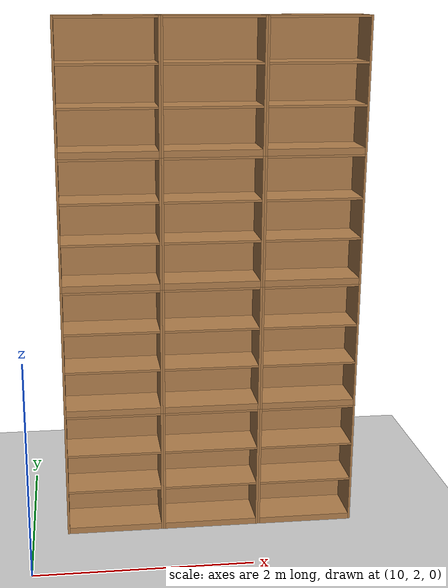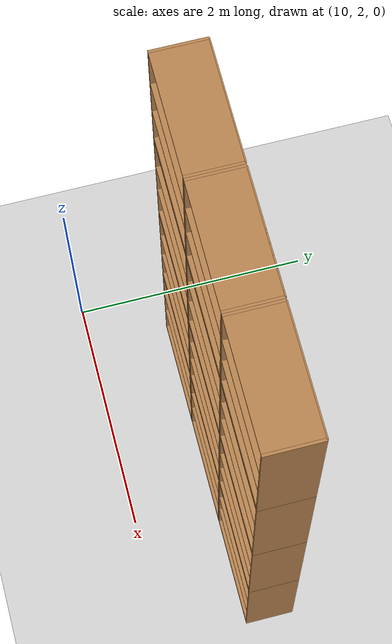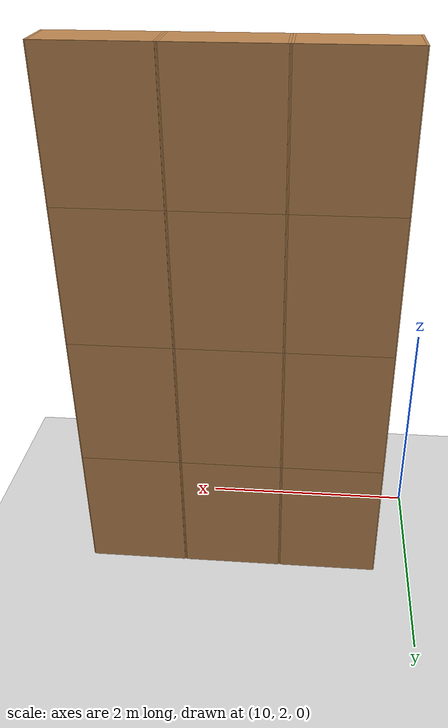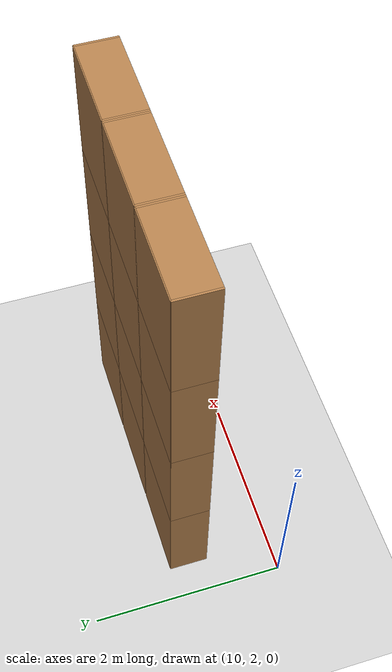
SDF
<sdf version="1.6">
 <world name="default">
  <model name="ground_plane">
   <static>1</static>
   <link name="link">
    <collision name="collision">
     <geometry><plane><normal>0 0 1</normal><size>100 100</size></plane></geometry>
     <surface>
      <contact><collide_bitmask>65535</collide_bitmask></contact>
      <friction><ode><mu>100</mu><mu2>50</mu2></ode></friction>
     </surface>
    </collision>
    <visual name="visual">
     <cast_shadows>0</cast_shadows>
     <geometry><plane><normal>0 0 1</normal><size>100 100</size></plane></geometry>
     <material>
      <script><uri>file://media/materials/scripts/gazebo.material</uri><name>Gazebo/Grey</name></script>
     </material>
    </visual>
   </link>
  </model>
  <model name="shelf2.0_clone_0_clone_clone_1">
   <model name="shelf1.0">
    <model name="bookshelf">
     <static>1</static>
     <link name="link">
      <inertial><mass>1</mass></inertial>
      <collision name="back">
       <pose>0 0.005 0.6 0 -0 0</pose>
       <geometry><box><size>0.9 0.01 1.2</size></box></geometry>
      </collision>
      <visual name="visual1">
       <pose>0 0.005 0.6 0 -0 0</pose>
       <geometry><box><size>0.9 0.01 1.2</size></box></geometry>
       <material>
        <script><uri>file://media/materials/scripts/gazebo.material</uri><name>Gazebo/Wood</name></script>
       </material>
      </visual>
      <collision name="left_side">
       <pose>0.45 -0.195 0.6 0 -0 0</pose>
       <geometry><box><size>0.02 0.4 1.2</size></box></geometry>
      </collision>
      <visual name="visual2">
       <pose>0.45 -0.195 0.6 0 -0 0</pose>
       <geometry><box><size>0.02 0.4 1.2</size></box></geometry>
       <material>
        <script><uri>file://media/materials/scripts/gazebo.material</uri><name>Gazebo/Wood</name></script>
       </material>
      </visual>
      <collision name="right_side">
       <pose>-0.45 -0.195 0.6 0 -0 0</pose>
       <geometry><box><size>0.02 0.4 1.2</size></box></geometry>
      </collision>
      <visual name="visual3">
       <pose>-0.45 -0.195 0.6 0 -0 0</pose>
       <geometry><box><size>0.02 0.4 1.2</size></box></geometry>
       <material>
        <script><uri>file://media/materials/scripts/gazebo.material</uri><name>Gazebo/Wood</name></script>
       </material>
      </visual>
      <collision name="bottom">
       <pose>0 -0.195 0.03 0 -0 0</pose>
       <geometry><box><size>0.88 0.4 0.06</size></box></geometry>
      </collision>
      <visual name="visual4">
       <pose>0 -0.195 0.03 0 -0 0</pose>
       <geometry><box><size>0.88 0.4 0.06</size></box></geometry>
       <material>
        <script><uri>file://media/materials/scripts/gazebo.material</uri><name>Gazebo/Wood</name></script>
       </material>
      </visual>
      <collision name="top">
       <pose>0 -0.195 1.19 0 -0 0</pose>
       <geometry><box><size>0.88 0.4 0.02</size></box></geometry>
      </collision>
      <visual name="visual5">
       <pose>0 -0.195 1.19 0 -0 0</pose>
       <geometry><box><size>0.88 0.4 0.02</size></box></geometry>
       <material>
        <script><uri>file://media/materials/scripts/gazebo.material</uri><name>Gazebo/Wood</name></script>
       </material>
      </visual>
      <collision name="low_shelf">
       <pose>0 -0.195 0.43 0 -0 0</pose>
       <geometry><box><size>0.88 0.4 0.02</size></box></geometry>
      </collision>
      <visual name="visual6">
       <pose>0 -0.195 0.43 0 -0 0</pose>
       <geometry><box><size>0.88 0.4 0.02</size></box></geometry>
       <material>
        <script><uri>file://media/materials/scripts/gazebo.material</uri><name>Gazebo/Wood</name></script>
       </material>
      </visual>
      <collision name="high_shelf">
       <pose>0 -0.195 0.8 0 -0 0</pose>
       <geometry><box><size>0.88 0.4 0.02</size></box></geometry>
      </collision>
      <visual name="visual7">
       <pose>0 -0.195 0.8 0 -0 0</pose>
       <geometry><box><size>0.88 0.4 0.02</size></box></geometry>
       <material>
        <script><uri>file://media/materials/scripts/gazebo.material</uri><name>Gazebo/Wood</name></script>
       </material>
      </visual>
     </link>
     <pose>1e-06 0 -1.8 0 -0 0</pose>
    </model>
    <model name="bookshelf_clone">
     <static>1</static>
     <link name="link">
      <inertial><mass>1</mass></inertial>
      <collision name="back">
       <pose>0 0.005 0.6 0 -0 0</pose>
       <geometry><box><size>0.9 0.01 1.2</size></box></geometry>
      </collision>
      <visual name="visual1">
       <pose>0 0.005 0.6 0 -0 0</pose>
       <geometry><box><size>0.9 0.01 1.2</size></box></geometry>
       <material>
        <script><uri>file://media/materials/scripts/gazebo.material</uri><name>Gazebo/Wood</name></script>
       </material>
      </visual>
      <collision name="left_side">
       <pose>0.45 -0.195 0.6 0 -0 0</pose>
       <geometry><box><size>0.02 0.4 1.2</size></box></geometry>
      </collision>
      <visual name="visual2">
       <pose>0.45 -0.195 0.6 0 -0 0</pose>
       <geometry><box><size>0.02 0.4 1.2</size></box></geometry>
       <material>
        <script><uri>file://media/materials/scripts/gazebo.material</uri><name>Gazebo/Wood</name></script>
       </material>
      </visual>
      <collision name="right_side">
       <pose>-0.45 -0.195 0.6 0 -0 0</pose>
       <geometry><box><size>0.02 0.4 1.2</size></box></geometry>
      </collision>
      <visual name="visual3">
       <pose>-0.45 -0.195 0.6 0 -0 0</pose>
       <geometry><box><size>0.02 0.4 1.2</size></box></geometry>
       <material>
        <script><uri>file://media/materials/scripts/gazebo.material</uri><name>Gazebo/Wood</name></script>
       </material>
      </visual>
      <collision name="bottom">
       <pose>0 -0.195 0.03 0 -0 0</pose>
       <geometry><box><size>0.88 0.4 0.06</size></box></geometry>
      </collision>
      <visual name="visual4">
       <pose>0 -0.195 0.03 0 -0 0</pose>
       <geometry><box><size>0.88 0.4 0.06</size></box></geometry>
       <material>
        <script><uri>file://media/materials/scripts/gazebo.material</uri><name>Gazebo/Wood</name></script>
       </material>
      </visual>
      <collision name="top">
       <pose>0 -0.195 1.19 0 -0 0</pose>
       <geometry><box><size>0.88 0.4 0.02</size></box></geometry>
      </collision>
      <visual name="visual5">
       <pose>0 -0.195 1.19 0 -0 0</pose>
       <geometry><box><size>0.88 0.4 0.02</size></box></geometry>
       <material>
        <script><uri>file://media/materials/scripts/gazebo.material</uri><name>Gazebo/Wood</name></script>
       </material>
      </visual>
      <collision name="low_shelf">
       <pose>0 -0.195 0.43 0 -0 0</pose>
       <geometry><box><size>0.88 0.4 0.02</size></box></geometry>
      </collision>
      <visual name="visual6">
       <pose>0 -0.195 0.43 0 -0 0</pose>
       <geometry><box><size>0.88 0.4 0.02</size></box></geometry>
       <material>
        <script><uri>file://media/materials/scripts/gazebo.material</uri><name>Gazebo/Wood</name></script>
       </material>
      </visual>
      <collision name="high_shelf">
       <pose>0 -0.195 0.8 0 -0 0</pose>
       <geometry><box><size>0.88 0.4 0.02</size></box></geometry>
      </collision>
      <visual name="visual7">
       <pose>0 -0.195 0.8 0 -0 0</pose>
       <geometry><box><size>0.88 0.4 0.02</size></box></geometry>
       <material>
        <script><uri>file://media/materials/scripts/gazebo.material</uri><name>Gazebo/Wood</name></script>
       </material>
      </visual>
     </link>
     <pose>1e-06 0 -0.600002 0 -0 0</pose>
    </model>
    <model name="bookshelf_clone_0">
     <static>1</static>
     <link name="link">
      <inertial><mass>1</mass></inertial>
      <collision name="back">
       <pose>0 0.005 0.6 0 -0 0</pose>
       <geometry><box><size>0.9 0.01 1.2</size></box></geometry>
      </collision>
      <visual name="visual1">
       <pose>0 0.005 0.6 0 -0 0</pose>
       <geometry><box><size>0.9 0.01 1.2</size></box></geometry>
       <material>
        <script><uri>file://media/materials/scripts/gazebo.material</uri><name>Gazebo/Wood</name></script>
       </material>
      </visual>
      <collision name="left_side">
       <pose>0.45 -0.195 0.6 0 -0 0</pose>
       <geometry><box><size>0.02 0.4 1.2</size></box></geometry>
      </collision>
      <visual name="visual2">
       <pose>0.45 -0.195 0.6 0 -0 0</pose>
       <geometry><box><size>0.02 0.4 1.2</size></box></geometry>
       <material>
        <script><uri>file://media/materials/scripts/gazebo.material</uri><name>Gazebo/Wood</name></script>
       </material>
      </visual>
      <collision name="right_side">
       <pose>-0.45 -0.195 0.6 0 -0 0</pose>
       <geometry><box><size>0.02 0.4 1.2</size></box></geometry>
      </collision>
      <visual name="visual3">
       <pose>-0.45 -0.195 0.6 0 -0 0</pose>
       <geometry><box><size>0.02 0.4 1.2</size></box></geometry>
       <material>
        <script><uri>file://media/materials/scripts/gazebo.material</uri><name>Gazebo/Wood</name></script>
       </material>
      </visual>
      <collision name="bottom">
       <pose>0 -0.195 0.03 0 -0 0</pose>
       <geometry><box><size>0.88 0.4 0.06</size></box></geometry>
      </collision>
      <visual name="visual4">
       <pose>0 -0.195 0.03 0 -0 0</pose>
       <geometry><box><size>0.88 0.4 0.06</size></box></geometry>
       <material>
        <script><uri>file://media/materials/scripts/gazebo.material</uri><name>Gazebo/Wood</name></script>
       </material>
      </visual>
      <collision name="top">
       <pose>0 -0.195 1.19 0 -0 0</pose>
       <geometry><box><size>0.88 0.4 0.02</size></box></geometry>
      </collision>
      <visual name="visual5">
       <pose>0 -0.195 1.19 0 -0 0</pose>
       <geometry><box><size>0.88 0.4 0.02</size></box></geometry>
       <material>
        <script><uri>file://media/materials/scripts/gazebo.material</uri><name>Gazebo/Wood</name></script>
       </material>
      </visual>
      <collision name="low_shelf">
       <pose>0 -0.195 0.43 0 -0 0</pose>
       <geometry><box><size>0.88 0.4 0.02</size></box></geometry>
      </collision>
      <visual name="visual6">
       <pose>0 -0.195 0.43 0 -0 0</pose>
       <geometry><box><size>0.88 0.4 0.02</size></box></geometry>
       <material>
        <script><uri>file://media/materials/scripts/gazebo.material</uri><name>Gazebo/Wood</name></script>
       </material>
      </visual>
      <collision name="high_shelf">
       <pose>0 -0.195 0.8 0 -0 0</pose>
       <geometry><box><size>0.88 0.4 0.02</size></box></geometry>
      </collision>
      <visual name="visual7">
       <pose>0 -0.195 0.8 0 -0 0</pose>
       <geometry><box><size>0.88 0.4 0.02</size></box></geometry>
       <material>
        <script><uri>file://media/materials/scripts/gazebo.material</uri><name>Gazebo/Wood</name></script>
       </material>
      </visual>
     </link>
     <pose>1e-06 0 0.599998 0 -0 0</pose>
    </model>
    <model name="bookshelf_clone_0_clone">
     <static>1</static>
     <link name="link">
      <inertial><mass>1</mass></inertial>
      <collision name="back">
       <pose>0 0.005 0.6 0 -0 0</pose>
       <geometry><box><size>0.9 0.01 1.2</size></box></geometry>
      </collision>
      <visual name="visual1">
       <pose>0 0.005 0.6 0 -0 0</pose>
       <geometry><box><size>0.9 0.01 1.2</size></box></geometry>
       <material>
        <script><uri>file://media/materials/scripts/gazebo.material</uri><name>Gazebo/Wood</name></script>
       </material>
      </visual>
      <collision name="left_side">
       <pose>0.45 -0.195 0.6 0 -0 0</pose>
       <geometry><box><size>0.02 0.4 1.2</size></box></geometry>
      </collision>
      <visual name="visual2">
       <pose>0.45 -0.195 0.6 0 -0 0</pose>
       <geometry><box><size>0.02 0.4 1.2</size></box></geometry>
       <material>
        <script><uri>file://media/materials/scripts/gazebo.material</uri><name>Gazebo/Wood</name></script>
       </material>
      </visual>
      <collision name="right_side">
       <pose>-0.45 -0.195 0.6 0 -0 0</pose>
       <geometry><box><size>0.02 0.4 1.2</size></box></geometry>
      </collision>
      <visual name="visual3">
       <pose>-0.45 -0.195 0.6 0 -0 0</pose>
       <geometry><box><size>0.02 0.4 1.2</size></box></geometry>
       <material>
        <script><uri>file://media/materials/scripts/gazebo.material</uri><name>Gazebo/Wood</name></script>
       </material>
      </visual>
      <collision name="bottom">
       <pose>0 -0.195 0.03 0 -0 0</pose>
       <geometry><box><size>0.88 0.4 0.06</size></box></geometry>
      </collision>
      <visual name="visual4">
       <pose>0 -0.195 0.03 0 -0 0</pose>
       <geometry><box><size>0.88 0.4 0.06</size></box></geometry>
       <material>
        <script><uri>file://media/materials/scripts/gazebo.material</uri><name>Gazebo/Wood</name></script>
       </material>
      </visual>
      <collision name="top">
       <pose>0 -0.195 1.19 0 -0 0</pose>
       <geometry><box><size>0.88 0.4 0.02</size></box></geometry>
      </collision>
      <visual name="visual5">
       <pose>0 -0.195 1.19 0 -0 0</pose>
       <geometry><box><size>0.88 0.4 0.02</size></box></geometry>
       <material>
        <script><uri>file://media/materials/scripts/gazebo.material</uri><name>Gazebo/Wood</name></script>
       </material>
      </visual>
      <collision name="low_shelf">
       <pose>0 -0.195 0.43 0 -0 0</pose>
       <geometry><box><size>0.88 0.4 0.02</size></box></geometry>
      </collision>
      <visual name="visual6">
       <pose>0 -0.195 0.43 0 -0 0</pose>
       <geometry><box><size>0.88 0.4 0.02</size></box></geometry>
       <material>
        <script><uri>file://media/materials/scripts/gazebo.material</uri><name>Gazebo/Wood</name></script>
       </material>
      </visual>
      <collision name="high_shelf">
       <pose>0 -0.195 0.8 0 -0 0</pose>
       <geometry><box><size>0.88 0.4 0.02</size></box></geometry>
      </collision>
      <visual name="visual7">
       <pose>0 -0.195 0.8 0 -0 0</pose>
       <geometry><box><size>0.88 0.4 0.02</size></box></geometry>
       <material>
        <script><uri>file://media/materials/scripts/gazebo.material</uri><name>Gazebo/Wood</name></script>
       </material>
      </visual>
     </link>
     <pose>1e-06 0 1.8 0 -0 0</pose>
    </model>
    <joint name="link_JOINT_3" type="fixed">
     <parent>bookshelf::link</parent>
     <child>bookshelf_clone::link</child>
     <physics>
      <ode><limit><cfm>0</cfm><erp>0.2</erp></limit><suspension><cfm>0</cfm><erp>0.2</erp></suspension></ode>
     </physics>
    </joint>
    <joint name="link_JOINT_4" type="fixed">
     <parent>bookshelf::link</parent>
     <child>bookshelf_clone_0::link</child>
     <physics>
      <ode><limit><cfm>0</cfm><erp>0.2</erp></limit><suspension><cfm>0</cfm><erp>0.2</erp></suspension></ode>
     </physics>
    </joint>
    <joint name="link_JOINT_5" type="fixed">
     <parent>bookshelf::link</parent>
     <child>bookshelf_clone_0_clone::link</child>
     <physics>
      <ode><limit><cfm>0</cfm><erp>0.2</erp></limit><suspension><cfm>0</cfm><erp>0.2</erp></suspension></ode>
     </physics>
    </joint>
    <static>0</static>
    <pose>-0.920027 0 0 0 -0 0</pose>
   </model>
   <model name="shelf1.0_clone">
    <model name="bookshelf">
     <static>1</static>
     <link name="link">
      <inertial><mass>1</mass></inertial>
      <collision name="back">
       <pose>0 0.005 0.6 0 -0 0</pose>
       <geometry><box><size>0.9 0.01 1.2</size></box></geometry>
      </collision>
      <visual name="visual1">
       <pose>0 0.005 0.6 0 -0 0</pose>
       <geometry><box><size>0.9 0.01 1.2</size></box></geometry>
       <material>
        <script><uri>file://media/materials/scripts/gazebo.material</uri><name>Gazebo/Wood</name></script>
       </material>
      </visual>
      <collision name="left_side">
       <pose>0.45 -0.195 0.6 0 -0 0</pose>
       <geometry><box><size>0.02 0.4 1.2</size></box></geometry>
      </collision>
      <visual name="visual2">
       <pose>0.45 -0.195 0.6 0 -0 0</pose>
       <geometry><box><size>0.02 0.4 1.2</size></box></geometry>
       <material>
        <script><uri>file://media/materials/scripts/gazebo.material</uri><name>Gazebo/Wood</name></script>
       </material>
      </visual>
      <collision name="right_side">
       <pose>-0.45 -0.195 0.6 0 -0 0</pose>
       <geometry><box><size>0.02 0.4 1.2</size></box></geometry>
      </collision>
      <visual name="visual3">
       <pose>-0.45 -0.195 0.6 0 -0 0</pose>
       <geometry><box><size>0.02 0.4 1.2</size></box></geometry>
       <material>
        <script><uri>file://media/materials/scripts/gazebo.material</uri><name>Gazebo/Wood</name></script>
       </material>
      </visual>
      <collision name="bottom">
       <pose>0 -0.195 0.03 0 -0 0</pose>
       <geometry><box><size>0.88 0.4 0.06</size></box></geometry>
      </collision>
      <visual name="visual4">
       <pose>0 -0.195 0.03 0 -0 0</pose>
       <geometry><box><size>0.88 0.4 0.06</size></box></geometry>
       <material>
        <script><uri>file://media/materials/scripts/gazebo.material</uri><name>Gazebo/Wood</name></script>
       </material>
      </visual>
      <collision name="top">
       <pose>0 -0.195 1.19 0 -0 0</pose>
       <geometry><box><size>0.88 0.4 0.02</size></box></geometry>
      </collision>
      <visual name="visual5">
       <pose>0 -0.195 1.19 0 -0 0</pose>
       <geometry><box><size>0.88 0.4 0.02</size></box></geometry>
       <material>
        <script><uri>file://media/materials/scripts/gazebo.material</uri><name>Gazebo/Wood</name></script>
       </material>
      </visual>
      <collision name="low_shelf">
       <pose>0 -0.195 0.43 0 -0 0</pose>
       <geometry><box><size>0.88 0.4 0.02</size></box></geometry>
      </collision>
      <visual name="visual6">
       <pose>0 -0.195 0.43 0 -0 0</pose>
       <geometry><box><size>0.88 0.4 0.02</size></box></geometry>
       <material>
        <script><uri>file://media/materials/scripts/gazebo.material</uri><name>Gazebo/Wood</name></script>
       </material>
      </visual>
      <collision name="high_shelf">
       <pose>0 -0.195 0.8 0 -0 0</pose>
       <geometry><box><size>0.88 0.4 0.02</size></box></geometry>
      </collision>
      <visual name="visual7">
       <pose>0 -0.195 0.8 0 -0 0</pose>
       <geometry><box><size>0.88 0.4 0.02</size></box></geometry>
       <material>
        <script><uri>file://media/materials/scripts/gazebo.material</uri><name>Gazebo/Wood</name></script>
       </material>
      </visual>
     </link>
     <pose>1e-06 0 -1.8 0 -0 0</pose>
    </model>
    <model name="bookshelf_clone">
     <static>1</static>
     <link name="link">
      <inertial><mass>1</mass></inertial>
      <collision name="back">
       <pose>0 0.005 0.6 0 -0 0</pose>
       <geometry><box><size>0.9 0.01 1.2</size></box></geometry>
      </collision>
      <visual name="visual1">
       <pose>0 0.005 0.6 0 -0 0</pose>
       <geometry><box><size>0.9 0.01 1.2</size></box></geometry>
       <material>
        <script><uri>file://media/materials/scripts/gazebo.material</uri><name>Gazebo/Wood</name></script>
       </material>
      </visual>
      <collision name="left_side">
       <pose>0.45 -0.195 0.6 0 -0 0</pose>
       <geometry><box><size>0.02 0.4 1.2</size></box></geometry>
      </collision>
      <visual name="visual2">
       <pose>0.45 -0.195 0.6 0 -0 0</pose>
       <geometry><box><size>0.02 0.4 1.2</size></box></geometry>
       <material>
        <script><uri>file://media/materials/scripts/gazebo.material</uri><name>Gazebo/Wood</name></script>
       </material>
      </visual>
      <collision name="right_side">
       <pose>-0.45 -0.195 0.6 0 -0 0</pose>
       <geometry><box><size>0.02 0.4 1.2</size></box></geometry>
      </collision>
      <visual name="visual3">
       <pose>-0.45 -0.195 0.6 0 -0 0</pose>
       <geometry><box><size>0.02 0.4 1.2</size></box></geometry>
       <material>
        <script><uri>file://media/materials/scripts/gazebo.material</uri><name>Gazebo/Wood</name></script>
       </material>
      </visual>
      <collision name="bottom">
       <pose>0 -0.195 0.03 0 -0 0</pose>
       <geometry><box><size>0.88 0.4 0.06</size></box></geometry>
      </collision>
      <visual name="visual4">
       <pose>0 -0.195 0.03 0 -0 0</pose>
       <geometry><box><size>0.88 0.4 0.06</size></box></geometry>
       <material>
        <script><uri>file://media/materials/scripts/gazebo.material</uri><name>Gazebo/Wood</name></script>
       </material>
      </visual>
      <collision name="top">
       <pose>0 -0.195 1.19 0 -0 0</pose>
       <geometry><box><size>0.88 0.4 0.02</size></box></geometry>
      </collision>
      <visual name="visual5">
       <pose>0 -0.195 1.19 0 -0 0</pose>
       <geometry><box><size>0.88 0.4 0.02</size></box></geometry>
       <material>
        <script><uri>file://media/materials/scripts/gazebo.material</uri><name>Gazebo/Wood</name></script>
       </material>
      </visual>
      <collision name="low_shelf">
       <pose>0 -0.195 0.43 0 -0 0</pose>
       <geometry><box><size>0.88 0.4 0.02</size></box></geometry>
      </collision>
      <visual name="visual6">
       <pose>0 -0.195 0.43 0 -0 0</pose>
       <geometry><box><size>0.88 0.4 0.02</size></box></geometry>
       <material>
        <script><uri>file://media/materials/scripts/gazebo.material</uri><name>Gazebo/Wood</name></script>
       </material>
      </visual>
      <collision name="high_shelf">
       <pose>0 -0.195 0.8 0 -0 0</pose>
       <geometry><box><size>0.88 0.4 0.02</size></box></geometry>
      </collision>
      <visual name="visual7">
       <pose>0 -0.195 0.8 0 -0 0</pose>
       <geometry><box><size>0.88 0.4 0.02</size></box></geometry>
       <material>
        <script><uri>file://media/materials/scripts/gazebo.material</uri><name>Gazebo/Wood</name></script>
       </material>
      </visual>
     </link>
     <pose>1e-06 0 -0.600002 0 -0 0</pose>
    </model>
    <model name="bookshelf_clone_0">
     <static>1</static>
     <link name="link">
      <inertial><mass>1</mass></inertial>
      <collision name="back">
       <pose>0 0.005 0.6 0 -0 0</pose>
       <geometry><box><size>0.9 0.01 1.2</size></box></geometry>
      </collision>
      <visual name="visual1">
       <pose>0 0.005 0.6 0 -0 0</pose>
       <geometry><box><size>0.9 0.01 1.2</size></box></geometry>
       <material>
        <script><uri>file://media/materials/scripts/gazebo.material</uri><name>Gazebo/Wood</name></script>
       </material>
      </visual>
      <collision name="left_side">
       <pose>0.45 -0.195 0.6 0 -0 0</pose>
       <geometry><box><size>0.02 0.4 1.2</size></box></geometry>
      </collision>
      <visual name="visual2">
       <pose>0.45 -0.195 0.6 0 -0 0</pose>
       <geometry><box><size>0.02 0.4 1.2</size></box></geometry>
       <material>
        <script><uri>file://media/materials/scripts/gazebo.material</uri><name>Gazebo/Wood</name></script>
       </material>
      </visual>
      <collision name="right_side">
       <pose>-0.45 -0.195 0.6 0 -0 0</pose>
       <geometry><box><size>0.02 0.4 1.2</size></box></geometry>
      </collision>
      <visual name="visual3">
       <pose>-0.45 -0.195 0.6 0 -0 0</pose>
       <geometry><box><size>0.02 0.4 1.2</size></box></geometry>
       <material>
        <script><uri>file://media/materials/scripts/gazebo.material</uri><name>Gazebo/Wood</name></script>
       </material>
      </visual>
      <collision name="bottom">
       <pose>0 -0.195 0.03 0 -0 0</pose>
       <geometry><box><size>0.88 0.4 0.06</size></box></geometry>
      </collision>
      <visual name="visual4">
       <pose>0 -0.195 0.03 0 -0 0</pose>
       <geometry><box><size>0.88 0.4 0.06</size></box></geometry>
       <material>
        <script><uri>file://media/materials/scripts/gazebo.material</uri><name>Gazebo/Wood</name></script>
       </material>
      </visual>
      <collision name="top">
       <pose>0 -0.195 1.19 0 -0 0</pose>
       <geometry><box><size>0.88 0.4 0.02</size></box></geometry>
      </collision>
      <visual name="visual5">
       <pose>0 -0.195 1.19 0 -0 0</pose>
       <geometry><box><size>0.88 0.4 0.02</size></box></geometry>
       <material>
        <script><uri>file://media/materials/scripts/gazebo.material</uri><name>Gazebo/Wood</name></script>
       </material>
      </visual>
      <collision name="low_shelf">
       <pose>0 -0.195 0.43 0 -0 0</pose>
       <geometry><box><size>0.88 0.4 0.02</size></box></geometry>
      </collision>
      <visual name="visual6">
       <pose>0 -0.195 0.43 0 -0 0</pose>
       <geometry><box><size>0.88 0.4 0.02</size></box></geometry>
       <material>
        <script><uri>file://media/materials/scripts/gazebo.material</uri><name>Gazebo/Wood</name></script>
       </material>
      </visual>
      <collision name="high_shelf">
       <pose>0 -0.195 0.8 0 -0 0</pose>
       <geometry><box><size>0.88 0.4 0.02</size></box></geometry>
      </collision>
      <visual name="visual7">
       <pose>0 -0.195 0.8 0 -0 0</pose>
       <geometry><box><size>0.88 0.4 0.02</size></box></geometry>
       <material>
        <script><uri>file://media/materials/scripts/gazebo.material</uri><name>Gazebo/Wood</name></script>
       </material>
      </visual>
     </link>
     <pose>1e-06 0 0.599998 0 -0 0</pose>
    </model>
    <model name="bookshelf_clone_0_clone">
     <static>1</static>
     <link name="link">
      <inertial><mass>1</mass></inertial>
      <collision name="back">
       <pose>0 0.005 0.6 0 -0 0</pose>
       <geometry><box><size>0.9 0.01 1.2</size></box></geometry>
      </collision>
      <visual name="visual1">
       <pose>0 0.005 0.6 0 -0 0</pose>
       <geometry><box><size>0.9 0.01 1.2</size></box></geometry>
       <material>
        <script><uri>file://media/materials/scripts/gazebo.material</uri><name>Gazebo/Wood</name></script>
       </material>
      </visual>
      <collision name="left_side">
       <pose>0.45 -0.195 0.6 0 -0 0</pose>
       <geometry><box><size>0.02 0.4 1.2</size></box></geometry>
      </collision>
      <visual name="visual2">
       <pose>0.45 -0.195 0.6 0 -0 0</pose>
       <geometry><box><size>0.02 0.4 1.2</size></box></geometry>
       <material>
        <script><uri>file://media/materials/scripts/gazebo.material</uri><name>Gazebo/Wood</name></script>
       </material>
      </visual>
      <collision name="right_side">
       <pose>-0.45 -0.195 0.6 0 -0 0</pose>
       <geometry><box><size>0.02 0.4 1.2</size></box></geometry>
      </collision>
      <visual name="visual3">
       <pose>-0.45 -0.195 0.6 0 -0 0</pose>
       <geometry><box><size>0.02 0.4 1.2</size></box></geometry>
       <material>
        <script><uri>file://media/materials/scripts/gazebo.material</uri><name>Gazebo/Wood</name></script>
       </material>
      </visual>
      <collision name="bottom">
       <pose>0 -0.195 0.03 0 -0 0</pose>
       <geometry><box><size>0.88 0.4 0.06</size></box></geometry>
      </collision>
      <visual name="visual4">
       <pose>0 -0.195 0.03 0 -0 0</pose>
       <geometry><box><size>0.88 0.4 0.06</size></box></geometry>
       <material>
        <script><uri>file://media/materials/scripts/gazebo.material</uri><name>Gazebo/Wood</name></script>
       </material>
      </visual>
      <collision name="top">
       <pose>0 -0.195 1.19 0 -0 0</pose>
       <geometry><box><size>0.88 0.4 0.02</size></box></geometry>
      </collision>
      <visual name="visual5">
       <pose>0 -0.195 1.19 0 -0 0</pose>
       <geometry><box><size>0.88 0.4 0.02</size></box></geometry>
       <material>
        <script><uri>file://media/materials/scripts/gazebo.material</uri><name>Gazebo/Wood</name></script>
       </material>
      </visual>
      <collision name="low_shelf">
       <pose>0 -0.195 0.43 0 -0 0</pose>
       <geometry><box><size>0.88 0.4 0.02</size></box></geometry>
      </collision>
      <visual name="visual6">
       <pose>0 -0.195 0.43 0 -0 0</pose>
       <geometry><box><size>0.88 0.4 0.02</size></box></geometry>
       <material>
        <script><uri>file://media/materials/scripts/gazebo.material</uri><name>Gazebo/Wood</name></script>
       </material>
      </visual>
      <collision name="high_shelf">
       <pose>0 -0.195 0.8 0 -0 0</pose>
       <geometry><box><size>0.88 0.4 0.02</size></box></geometry>
      </collision>
      <visual name="visual7">
       <pose>0 -0.195 0.8 0 -0 0</pose>
       <geometry><box><size>0.88 0.4 0.02</size></box></geometry>
       <material>
        <script><uri>file://media/materials/scripts/gazebo.material</uri><name>Gazebo/Wood</name></script>
       </material>
      </visual>
     </link>
     <pose>1e-06 0 1.8 0 -0 0</pose>
    </model>
    <joint name="link_JOINT_3" type="fixed">
     <parent>bookshelf::link</parent>
     <child>bookshelf_clone::link</child>
     <physics>
      <ode><limit><cfm>0</cfm><erp>0.2</erp></limit><suspension><cfm>0</cfm><erp>0.2</erp></suspension></ode>
     </physics>
    </joint>
    <joint name="link_JOINT_4" type="fixed">
     <parent>bookshelf::link</parent>
     <child>bookshelf_clone_0::link</child>
     <physics>
      <ode><limit><cfm>0</cfm><erp>0.2</erp></limit><suspension><cfm>0</cfm><erp>0.2</erp></suspension></ode>
     </physics>
    </joint>
    <joint name="link_JOINT_5" type="fixed">
     <parent>bookshelf::link</parent>
     <child>bookshelf_clone_0_clone::link</child>
     <physics>
      <ode><limit><cfm>0</cfm><erp>0.2</erp></limit><suspension><cfm>0</cfm><erp>0.2</erp></suspension></ode>
     </physics>
    </joint>
    <static>0</static>
    <pose>-2.5e-05 0 0 0 -0 0</pose>
   </model>
   <model name="shelf1.0_clone_0">
    <model name="bookshelf">
     <static>1</static>
     <link name="link">
      <inertial><mass>1</mass></inertial>
      <collision name="back">
       <pose>0 0.005 0.6 0 -0 0</pose>
       <geometry><box><size>0.9 0.01 1.2</size></box></geometry>
      </collision>
      <visual name="visual1">
       <pose>0 0.005 0.6 0 -0 0</pose>
       <geometry><box><size>0.9 0.01 1.2</size></box></geometry>
       <material>
        <script><uri>file://media/materials/scripts/gazebo.material</uri><name>Gazebo/Wood</name></script>
       </material>
      </visual>
      <collision name="left_side">
       <pose>0.45 -0.195 0.6 0 -0 0</pose>
       <geometry><box><size>0.02 0.4 1.2</size></box></geometry>
      </collision>
      <visual name="visual2">
       <pose>0.45 -0.195 0.6 0 -0 0</pose>
       <geometry><box><size>0.02 0.4 1.2</size></box></geometry>
       <material>
        <script><uri>file://media/materials/scripts/gazebo.material</uri><name>Gazebo/Wood</name></script>
       </material>
      </visual>
      <collision name="right_side">
       <pose>-0.45 -0.195 0.6 0 -0 0</pose>
       <geometry><box><size>0.02 0.4 1.2</size></box></geometry>
      </collision>
      <visual name="visual3">
       <pose>-0.45 -0.195 0.6 0 -0 0</pose>
       <geometry><box><size>0.02 0.4 1.2</size></box></geometry>
       <material>
        <script><uri>file://media/materials/scripts/gazebo.material</uri><name>Gazebo/Wood</name></script>
       </material>
      </visual>
      <collision name="bottom">
       <pose>0 -0.195 0.03 0 -0 0</pose>
       <geometry><box><size>0.88 0.4 0.06</size></box></geometry>
      </collision>
      <visual name="visual4">
       <pose>0 -0.195 0.03 0 -0 0</pose>
       <geometry><box><size>0.88 0.4 0.06</size></box></geometry>
       <material>
        <script><uri>file://media/materials/scripts/gazebo.material</uri><name>Gazebo/Wood</name></script>
       </material>
      </visual>
      <collision name="top">
       <pose>0 -0.195 1.19 0 -0 0</pose>
       <geometry><box><size>0.88 0.4 0.02</size></box></geometry>
      </collision>
      <visual name="visual5">
       <pose>0 -0.195 1.19 0 -0 0</pose>
       <geometry><box><size>0.88 0.4 0.02</size></box></geometry>
       <material>
        <script><uri>file://media/materials/scripts/gazebo.material</uri><name>Gazebo/Wood</name></script>
       </material>
      </visual>
      <collision name="low_shelf">
       <pose>0 -0.195 0.43 0 -0 0</pose>
       <geometry><box><size>0.88 0.4 0.02</size></box></geometry>
      </collision>
      <visual name="visual6">
       <pose>0 -0.195 0.43 0 -0 0</pose>
       <geometry><box><size>0.88 0.4 0.02</size></box></geometry>
       <material>
        <script><uri>file://media/materials/scripts/gazebo.material</uri><name>Gazebo/Wood</name></script>
       </material>
      </visual>
      <collision name="high_shelf">
       <pose>0 -0.195 0.8 0 -0 0</pose>
       <geometry><box><size>0.88 0.4 0.02</size></box></geometry>
      </collision>
      <visual name="visual7">
       <pose>0 -0.195 0.8 0 -0 0</pose>
       <geometry><box><size>0.88 0.4 0.02</size></box></geometry>
       <material>
        <script><uri>file://media/materials/scripts/gazebo.material</uri><name>Gazebo/Wood</name></script>
       </material>
      </visual>
     </link>
     <pose>1e-06 0 -1.8 0 -0 0</pose>
    </model>
    <model name="bookshelf_clone">
     <static>1</static>
     <link name="link">
      <inertial><mass>1</mass></inertial>
      <collision name="back">
       <pose>0 0.005 0.6 0 -0 0</pose>
       <geometry><box><size>0.9 0.01 1.2</size></box></geometry>
      </collision>
      <visual name="visual1">
       <pose>0 0.005 0.6 0 -0 0</pose>
       <geometry><box><size>0.9 0.01 1.2</size></box></geometry>
       <material>
        <script><uri>file://media/materials/scripts/gazebo.material</uri><name>Gazebo/Wood</name></script>
       </material>
      </visual>
      <collision name="left_side">
       <pose>0.45 -0.195 0.6 0 -0 0</pose>
       <geometry><box><size>0.02 0.4 1.2</size></box></geometry>
      </collision>
      <visual name="visual2">
       <pose>0.45 -0.195 0.6 0 -0 0</pose>
       <geometry><box><size>0.02 0.4 1.2</size></box></geometry>
       <material>
        <script><uri>file://media/materials/scripts/gazebo.material</uri><name>Gazebo/Wood</name></script>
       </material>
      </visual>
      <collision name="right_side">
       <pose>-0.45 -0.195 0.6 0 -0 0</pose>
       <geometry><box><size>0.02 0.4 1.2</size></box></geometry>
      </collision>
      <visual name="visual3">
       <pose>-0.45 -0.195 0.6 0 -0 0</pose>
       <geometry><box><size>0.02 0.4 1.2</size></box></geometry>
       <material>
        <script><uri>file://media/materials/scripts/gazebo.material</uri><name>Gazebo/Wood</name></script>
       </material>
      </visual>
      <collision name="bottom">
       <pose>0 -0.195 0.03 0 -0 0</pose>
       <geometry><box><size>0.88 0.4 0.06</size></box></geometry>
      </collision>
      <visual name="visual4">
       <pose>0 -0.195 0.03 0 -0 0</pose>
       <geometry><box><size>0.88 0.4 0.06</size></box></geometry>
       <material>
        <script><uri>file://media/materials/scripts/gazebo.material</uri><name>Gazebo/Wood</name></script>
       </material>
      </visual>
      <collision name="top">
       <pose>0 -0.195 1.19 0 -0 0</pose>
       <geometry><box><size>0.88 0.4 0.02</size></box></geometry>
      </collision>
      <visual name="visual5">
       <pose>0 -0.195 1.19 0 -0 0</pose>
       <geometry><box><size>0.88 0.4 0.02</size></box></geometry>
       <material>
        <script><uri>file://media/materials/scripts/gazebo.material</uri><name>Gazebo/Wood</name></script>
       </material>
      </visual>
      <collision name="low_shelf">
       <pose>0 -0.195 0.43 0 -0 0</pose>
       <geometry><box><size>0.88 0.4 0.02</size></box></geometry>
      </collision>
      <visual name="visual6">
       <pose>0 -0.195 0.43 0 -0 0</pose>
       <geometry><box><size>0.88 0.4 0.02</size></box></geometry>
       <material>
        <script><uri>file://media/materials/scripts/gazebo.material</uri><name>Gazebo/Wood</name></script>
       </material>
      </visual>
      <collision name="high_shelf">
       <pose>0 -0.195 0.8 0 -0 0</pose>
       <geometry><box><size>0.88 0.4 0.02</size></box></geometry>
      </collision>
      <visual name="visual7">
       <pose>0 -0.195 0.8 0 -0 0</pose>
       <geometry><box><size>0.88 0.4 0.02</size></box></geometry>
       <material>
        <script><uri>file://media/materials/scripts/gazebo.material</uri><name>Gazebo/Wood</name></script>
       </material>
      </visual>
     </link>
     <pose>1e-06 0 -0.600002 0 -0 0</pose>
    </model>
    <model name="bookshelf_clone_0">
     <static>1</static>
     <link name="link">
      <inertial><mass>1</mass></inertial>
      <collision name="back">
       <pose>0 0.005 0.6 0 -0 0</pose>
       <geometry><box><size>0.9 0.01 1.2</size></box></geometry>
      </collision>
      <visual name="visual1">
       <pose>0 0.005 0.6 0 -0 0</pose>
       <geometry><box><size>0.9 0.01 1.2</size></box></geometry>
       <material>
        <script><uri>file://media/materials/scripts/gazebo.material</uri><name>Gazebo/Wood</name></script>
       </material>
      </visual>
      <collision name="left_side">
       <pose>0.45 -0.195 0.6 0 -0 0</pose>
       <geometry><box><size>0.02 0.4 1.2</size></box></geometry>
      </collision>
      <visual name="visual2">
       <pose>0.45 -0.195 0.6 0 -0 0</pose>
       <geometry><box><size>0.02 0.4 1.2</size></box></geometry>
       <material>
        <script><uri>file://media/materials/scripts/gazebo.material</uri><name>Gazebo/Wood</name></script>
       </material>
      </visual>
      <collision name="right_side">
       <pose>-0.45 -0.195 0.6 0 -0 0</pose>
       <geometry><box><size>0.02 0.4 1.2</size></box></geometry>
      </collision>
      <visual name="visual3">
       <pose>-0.45 -0.195 0.6 0 -0 0</pose>
       <geometry><box><size>0.02 0.4 1.2</size></box></geometry>
       <material>
        <script><uri>file://media/materials/scripts/gazebo.material</uri><name>Gazebo/Wood</name></script>
       </material>
      </visual>
      <collision name="bottom">
       <pose>0 -0.195 0.03 0 -0 0</pose>
       <geometry><box><size>0.88 0.4 0.06</size></box></geometry>
      </collision>
      <visual name="visual4">
       <pose>0 -0.195 0.03 0 -0 0</pose>
       <geometry><box><size>0.88 0.4 0.06</size></box></geometry>
       <material>
        <script><uri>file://media/materials/scripts/gazebo.material</uri><name>Gazebo/Wood</name></script>
       </material>
      </visual>
      <collision name="top">
       <pose>0 -0.195 1.19 0 -0 0</pose>
       <geometry><box><size>0.88 0.4 0.02</size></box></geometry>
      </collision>
      <visual name="visual5">
       <pose>0 -0.195 1.19 0 -0 0</pose>
       <geometry><box><size>0.88 0.4 0.02</size></box></geometry>
       <material>
        <script><uri>file://media/materials/scripts/gazebo.material</uri><name>Gazebo/Wood</name></script>
       </material>
      </visual>
      <collision name="low_shelf">
       <pose>0 -0.195 0.43 0 -0 0</pose>
       <geometry><box><size>0.88 0.4 0.02</size></box></geometry>
      </collision>
      <visual name="visual6">
       <pose>0 -0.195 0.43 0 -0 0</pose>
       <geometry><box><size>0.88 0.4 0.02</size></box></geometry>
       <material>
        <script><uri>file://media/materials/scripts/gazebo.material</uri><name>Gazebo/Wood</name></script>
       </material>
      </visual>
      <collision name="high_shelf">
       <pose>0 -0.195 0.8 0 -0 0</pose>
       <geometry><box><size>0.88 0.4 0.02</size></box></geometry>
      </collision>
      <visual name="visual7">
       <pose>0 -0.195 0.8 0 -0 0</pose>
       <geometry><box><size>0.88 0.4 0.02</size></box></geometry>
       <material>
        <script><uri>file://media/materials/scripts/gazebo.material</uri><name>Gazebo/Wood</name></script>
       </material>
      </visual>
     </link>
     <pose>1e-06 0 0.599998 0 -0 0</pose>
    </model>
    <model name="bookshelf_clone_0_clone">
     <static>1</static>
     <link name="link">
      <inertial><mass>1</mass></inertial>
      <collision name="back">
       <pose>0 0.005 0.6 0 -0 0</pose>
       <geometry><box><size>0.9 0.01 1.2</size></box></geometry>
      </collision>
      <visual name="visual1">
       <pose>0 0.005 0.6 0 -0 0</pose>
       <geometry><box><size>0.9 0.01 1.2</size></box></geometry>
       <material>
        <script><uri>file://media/materials/scripts/gazebo.material</uri><name>Gazebo/Wood</name></script>
       </material>
      </visual>
      <collision name="left_side">
       <pose>0.45 -0.195 0.6 0 -0 0</pose>
       <geometry><box><size>0.02 0.4 1.2</size></box></geometry>
      </collision>
      <visual name="visual2">
       <pose>0.45 -0.195 0.6 0 -0 0</pose>
       <geometry><box><size>0.02 0.4 1.2</size></box></geometry>
       <material>
        <script><uri>file://media/materials/scripts/gazebo.material</uri><name>Gazebo/Wood</name></script>
       </material>
      </visual>
      <collision name="right_side">
       <pose>-0.45 -0.195 0.6 0 -0 0</pose>
       <geometry><box><size>0.02 0.4 1.2</size></box></geometry>
      </collision>
      <visual name="visual3">
       <pose>-0.45 -0.195 0.6 0 -0 0</pose>
       <geometry><box><size>0.02 0.4 1.2</size></box></geometry>
       <material>
        <script><uri>file://media/materials/scripts/gazebo.material</uri><name>Gazebo/Wood</name></script>
       </material>
      </visual>
      <collision name="bottom">
       <pose>0 -0.195 0.03 0 -0 0</pose>
       <geometry><box><size>0.88 0.4 0.06</size></box></geometry>
      </collision>
      <visual name="visual4">
       <pose>0 -0.195 0.03 0 -0 0</pose>
       <geometry><box><size>0.88 0.4 0.06</size></box></geometry>
       <material>
        <script><uri>file://media/materials/scripts/gazebo.material</uri><name>Gazebo/Wood</name></script>
       </material>
      </visual>
      <collision name="top">
       <pose>0 -0.195 1.19 0 -0 0</pose>
       <geometry><box><size>0.88 0.4 0.02</size></box></geometry>
      </collision>
      <visual name="visual5">
       <pose>0 -0.195 1.19 0 -0 0</pose>
       <geometry><box><size>0.88 0.4 0.02</size></box></geometry>
       <material>
        <script><uri>file://media/materials/scripts/gazebo.material</uri><name>Gazebo/Wood</name></script>
       </material>
      </visual>
      <collision name="low_shelf">
       <pose>0 -0.195 0.43 0 -0 0</pose>
       <geometry><box><size>0.88 0.4 0.02</size></box></geometry>
      </collision>
      <visual name="visual6">
       <pose>0 -0.195 0.43 0 -0 0</pose>
       <geometry><box><size>0.88 0.4 0.02</size></box></geometry>
       <material>
        <script><uri>file://media/materials/scripts/gazebo.material</uri><name>Gazebo/Wood</name></script>
       </material>
      </visual>
      <collision name="high_shelf">
       <pose>0 -0.195 0.8 0 -0 0</pose>
       <geometry><box><size>0.88 0.4 0.02</size></box></geometry>
      </collision>
      <visual name="visual7">
       <pose>0 -0.195 0.8 0 -0 0</pose>
       <geometry><box><size>0.88 0.4 0.02</size></box></geometry>
       <material>
        <script><uri>file://media/materials/scripts/gazebo.material</uri><name>Gazebo/Wood</name></script>
       </material>
      </visual>
     </link>
     <pose>1e-06 0 1.8 0 -0 0</pose>
    </model>
    <joint name="link_JOINT_3" type="fixed">
     <parent>bookshelf::link</parent>
     <child>bookshelf_clone::link</child>
     <physics>
      <ode><limit><cfm>0</cfm><erp>0.2</erp></limit><suspension><cfm>0</cfm><erp>0.2</erp></suspension></ode>
     </physics>
    </joint>
    <joint name="link_JOINT_4" type="fixed">
     <parent>bookshelf::link</parent>
     <child>bookshelf_clone_0::link</child>
     <physics>
      <ode><limit><cfm>0</cfm><erp>0.2</erp></limit><suspension><cfm>0</cfm><erp>0.2</erp></suspension></ode>
     </physics>
    </joint>
    <joint name="link_JOINT_5" type="fixed">
     <parent>bookshelf::link</parent>
     <child>bookshelf_clone_0_clone::link</child>
     <physics>
      <ode><limit><cfm>0</cfm><erp>0.2</erp></limit><suspension><cfm>0</cfm><erp>0.2</erp></suspension></ode>
     </physics>
    </joint>
    <static>0</static>
    <pose>0.919977 0 0 0 -0 0</pose>
   </model>
   <joint name="link_JOINT_0" type="fixed">
    <parent>shelf1.0::bookshelf::link</parent>
    <child>shelf1.0_clone::bookshelf::link</child>
    <physics>
     <ode><limit><cfm>0</cfm><erp>0.2</erp></limit><suspension><cfm>0</cfm><erp>0.2</erp></suspension></ode>
    </physics>
   </joint>
   <joint name="link_JOINT_1" type="fixed">
    <parent>shelf1.0::bookshelf::link</parent>
    <child>shelf1.0_clone_0::bookshelf::link</child>
    <physics>
     <ode><limit><cfm>0</cfm><erp>0.2</erp></limit><suspension><cfm>0</cfm><erp>0.2</erp></suspension></ode>
    </physics>
   </joint>
   <static>0</static>
   <pose>11.7013 3.09037 1.80812 0 -0 0</pose>
  </model>
 </world>
</sdf>
